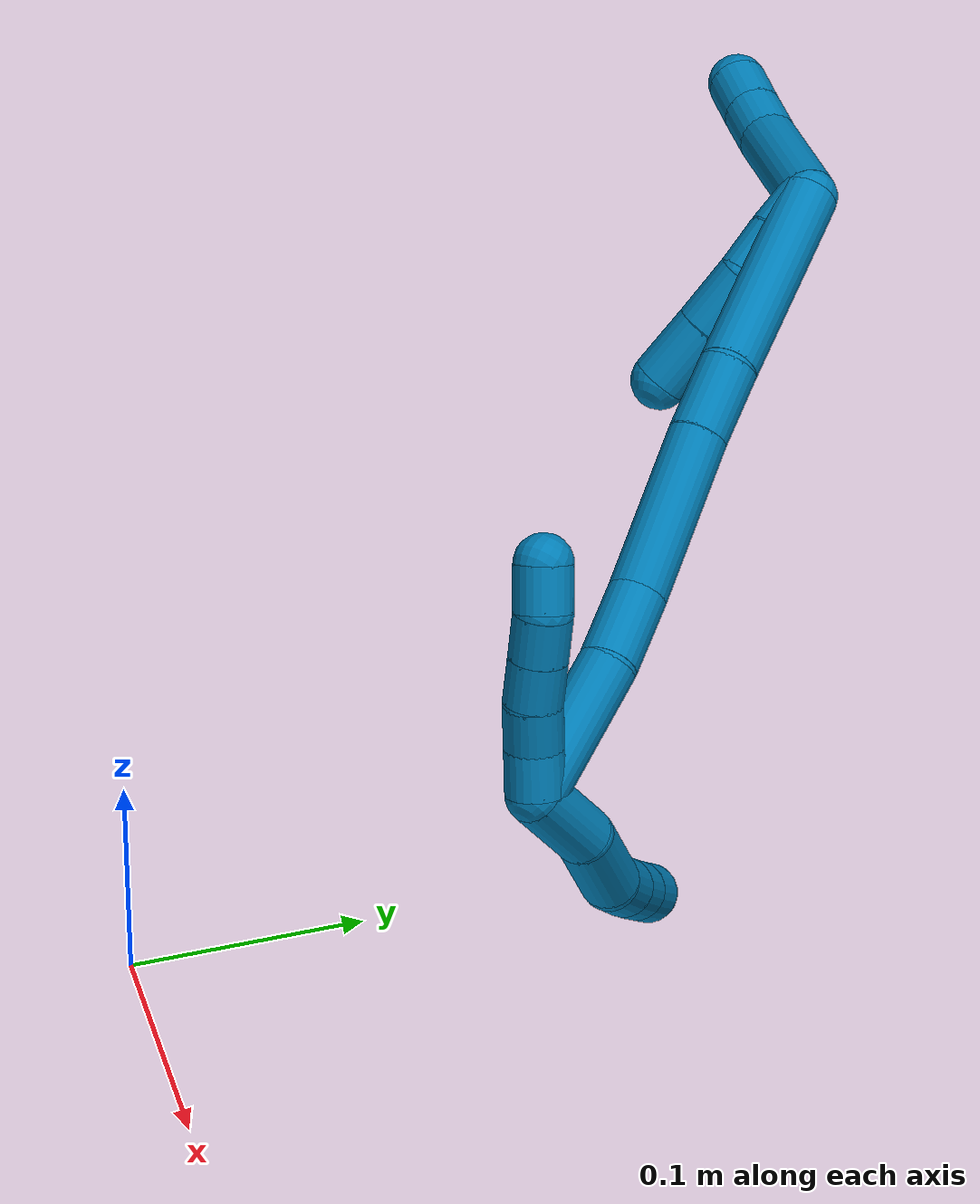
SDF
<sdf version="1.7">
 <world name="default">
  <model name="photoneo_s_sensor">
   <static>1</static>
   <pose>0 0 2 1.57079 1.57079 3.14159</pose>
   <link name="link">
    <inertial><mass>0.1</mass></inertial>
    <sensor name="sensor" type="depth">
     <update_rate>30</update_rate>
     <camera>
      <horizontal_fov>1.22</horizontal_fov>
      <image><width>1920</width><height>1200</height><format>B8G8R8</format></image>
      <clip><near>0.1</near><far>4</far></clip>
      <depth_camera><output>points</output></depth_camera>
     </camera>
     <plugin name="camera_plugin" filename="libgazebo_ros_depth_camera.so">
      <baseline>0.2</baseline>
      <alwaysOn>1</alwaysOn>
      <updateRate>0.0</updateRate>
      <cameraName>camera_ir</cameraName>
      <imageTopicName>/camera/color/image_raw</imageTopicName>
      <cameraInfoTopicName>/camera/color/camera_info</cameraInfoTopicName>
      <depthImageTopicName>/camera/depth/image_raw</depthImageTopicName>
      <depthImageCameraInfoTopicName>/camera/depth/camera_info</depthImageCameraInfoTopicName>
      <pointCloudTopicName>/camera/depth/points</pointCloudTopicName>
      <frameName>fr_optical</frameName>
      <pointCloudCutoff>0.1</pointCloudCutoff>
      <pointCloudCutoffMax>2.0</pointCloudCutoffMax>
      <distortionK1>0</distortionK1>
      <distortionK2>0</distortionK2>
      <distortionK3>0</distortionK3>
      <distortionT1>0</distortionT1>
      <distortionT2>0</distortionT2>
      <CxPrime>0</CxPrime>
      <Cx>0</Cx>
      <Cy>0</Cy>
      <focalLength>0</focalLength>
      <hackBaseline>0</hackBaseline>
     </plugin>
    </sensor>
   </link>
  </model>
  <model name="bin">
   <static>1</static>
   <link name="bottom">
    <collision name="collision-bottom">
     <pose>0 0 -0.01 0 -0 0</pose>
     <geometry><box><size>0.8 0.6 0.02</size></box></geometry>
     <surface>
      <friction><ode><mu>100</mu><mu2>100</mu2></ode></friction>
      <contact><collide_bitmask>65535</collide_bitmask></contact>
     </surface>
    </collision>
   </link>
   <link name="west_wall">
    <collision name="collision-west_wall">
     <pose>-0.41 0 0.1 0 -0 0</pose>
     <geometry><box><size>0.02 0.6 0.2</size></box></geometry>
     <surface>
      <friction><ode><mu>100</mu><mu2>100</mu2></ode></friction>
      <contact><collide_bitmask>65535</collide_bitmask></contact>
     </surface>
    </collision>
   </link>
   <link name="east_wall">
    <collision name="collision-east_wall">
     <pose>0.41 0 0.1 0 -0 0</pose>
     <geometry><box><size>0.02 0.6 0.2</size></box></geometry>
     <surface>
      <friction><ode><mu>100</mu><mu2>100</mu2></ode></friction>
      <contact><collide_bitmask>65535</collide_bitmask></contact>
     </surface>
    </collision>
   </link>
   <link name="south_wall">
    <collision name="collision-south_wall">
     <pose>0 -0.31 0.1 0 -0 0</pose>
     <geometry><box><size>0.8 0.02 0.2</size></box></geometry>
     <surface>
      <friction><ode><mu>100</mu><mu2>100</mu2></ode></friction>
      <contact><collide_bitmask>65535</collide_bitmask></contact>
     </surface>
    </collision>
   </link>
   <link name="north_wall">
    <collision name="collision-north_wall">
     <pose>0 0.31 0.1 0 -0 0</pose>
     <geometry><box><size>0.8 0.02 0.2</size></box></geometry>
     <surface>
      <friction><ode><mu>100</mu><mu2>100</mu2></ode></friction>
      <contact><collide_bitmask>65535</collide_bitmask></contact>
     </surface>
    </collision>
   </link>
  </model>
  <model name="9">
   <static>0</static>
   <link name="9">
    <collision name="collision-cylinder-e_1_2_8">
     <pose>0.019263 0.003345 0.002102 -1.00972 1.36852 -0.847029</pose>
     <geometry><cylinder><radius>0.0125</radius><length>0.039328</length></cylinder></geometry>
     <surface>
      <friction><ode><mu>1.16</mu><mu2>1.16</mu2><slip1>0</slip1><slip2>0</slip2></ode></friction>
      <contact><ode><kp>1e+06</kp><kd>1</kd><max_vel>0</max_vel><min_depth>0.001</min_depth></ode></contact>
     </surface>
    </collision>
    <visual name="visual-cylinder-e_1_2_8">
     <pose>0.019263 0.003345 0.002102 -1.00972 1.36852 -0.847029</pose>
     <geometry><cylinder><radius>0.0125</radius><length>0.039328</length></cylinder></geometry>
     <material><ambient>0 0.490196 0.709804 1</ambient></material>
    </visual>
    <collision name="collision-cylinder-e_2_8_9">
     <pose>0.057697 0.015785 0.0047 -1.51632 1.12722 -1.07858</pose>
     <geometry><cylinder><radius>0.0125</radius><length>0.042449</length></cylinder></geometry>
     <surface>
      <friction><ode><mu>1.16</mu><mu2>1.16</mu2><slip1>0</slip1><slip2>0</slip2></ode></friction>
      <contact><ode><kp>1e+06</kp><kd>1</kd><max_vel>0</max_vel><min_depth>0.001</min_depth></ode></contact>
     </surface>
    </collision>
    <visual name="visual-cylinder-e_2_8_9">
     <pose>0.057697 0.015785 0.0047 -1.51632 1.12722 -1.07858</pose>
     <geometry><cylinder><radius>0.0125</radius><length>0.042449</length></cylinder></geometry>
     <material><ambient>0 0.490196 0.709804 1</ambient></material>
    </visual>
    <collision name="collision-cylinder-e_3_9_10">
     <pose>0.086307 0.031388 0.009068 -1.03412 0.8947 -0.532713</pose>
     <geometry><cylinder><radius>0.0125</radius><length>0.024203</length></cylinder></geometry>
     <surface>
      <friction><ode><mu>1.16</mu><mu2>1.16</mu2><slip1>0</slip1><slip2>0</slip2></ode></friction>
      <contact><ode><kp>1e+06</kp><kd>1</kd><max_vel>0</max_vel><min_depth>0.001</min_depth></ode></contact>
     </surface>
    </collision>
    <visual name="visual-cylinder-e_3_9_10">
     <pose>0.086307 0.031388 0.009068 -1.03412 0.8947 -0.532713</pose>
     <geometry><cylinder><radius>0.0125</radius><length>0.024203</length></cylinder></geometry>
     <material><ambient>0 0.490196 0.709804 1</ambient></material>
    </visual>
    <collision name="collision-cylinder-e_4_10_11">
     <pose>0.104423 0.044371 0.016978 -1.01313 0.849442 -0.491711</pose>
     <geometry><cylinder><radius>0.0125</radius><length>0.023111</length></cylinder></geometry>
     <surface>
      <friction><ode><mu>1.16</mu><mu2>1.16</mu2><slip1>0</slip1><slip2>0</slip2></ode></friction>
      <contact><ode><kp>1e+06</kp><kd>1</kd><max_vel>0</max_vel><min_depth>0.001</min_depth></ode></contact>
     </surface>
    </collision>
    <visual name="visual-cylinder-e_4_10_11">
     <pose>0.104423 0.044371 0.016978 -1.01313 0.849442 -0.491711</pose>
     <geometry><cylinder><radius>0.0125</radius><length>0.023111</length></cylinder></geometry>
     <material><ambient>0 0.490196 0.709804 1</ambient></material>
    </visual>
    <collision name="collision-cylinder-e_5_11_6">
     <pose>0.121005 0.056487 0.024888 -0.96925 0.857397 -0.472294</pose>
     <geometry><cylinder><radius>0.0125</radius><length>0.020909</length></cylinder></geometry>
     <surface>
      <friction><ode><mu>1.16</mu><mu2>1.16</mu2><slip1>0</slip1><slip2>0</slip2></ode></friction>
      <contact><ode><kp>1e+06</kp><kd>1</kd><max_vel>0</max_vel><min_depth>0.001</min_depth></ode></contact>
     </surface>
    </collision>
    <visual name="visual-cylinder-e_5_11_6">
     <pose>0.121005 0.056487 0.024888 -0.96925 0.857397 -0.472294</pose>
     <geometry><cylinder><radius>0.0125</radius><length>0.020909</length></cylinder></geometry>
     <material><ambient>0 0.490196 0.709804 1</ambient></material>
    </visual>
    <collision name="collision-cylinder-e_1_2_12">
     <pose>-0.007248 -0.001265 0.006773 0.184676 -0.810697 -0.079431</pose>
     <geometry><cylinder><radius>0.0125</radius><length>0.02</length></cylinder></geometry>
     <surface>
      <friction><ode><mu>1.16</mu><mu2>1.16</mu2><slip1>0</slip1><slip2>0</slip2></ode></friction>
      <contact><ode><kp>1e+06</kp><kd>1</kd><max_vel>0</max_vel><min_depth>0.001</min_depth></ode></contact>
     </surface>
    </collision>
    <visual name="visual-cylinder-e_1_2_12">
     <pose>-0.007248 -0.001265 0.006773 0.184676 -0.810697 -0.079431</pose>
     <geometry><cylinder><radius>0.0125</radius><length>0.02</length></cylinder></geometry>
     <material><ambient>0 0.490196 0.709804 1</ambient></material>
    </visual>
    <collision name="collision-cylinder-e_2_12_13">
     <pose>-0.022282 -0.005006 0.019311 0.405573 -0.892509 -0.196117</pose>
     <geometry><cylinder><radius>0.0125</radius><length>0.02</length></cylinder></geometry>
     <surface>
      <friction><ode><mu>1.16</mu><mu2>1.16</mu2><slip1>0</slip1><slip2>0</slip2></ode></friction>
      <contact><ode><kp>1e+06</kp><kd>1</kd><max_vel>0</max_vel><min_depth>0.001</min_depth></ode></contact>
     </surface>
    </collision>
    <visual name="visual-cylinder-e_2_12_13">
     <pose>-0.022282 -0.005006 0.019311 0.405573 -0.892509 -0.196117</pose>
     <geometry><cylinder><radius>0.0125</radius><length>0.02</length></cylinder></geometry>
     <material><ambient>0 0.490196 0.709804 1</ambient></material>
    </visual>
    <collision name="collision-cylinder-e_3_13_14">
     <pose>-0.036938 -0.010577 0.031651 0.43999 -0.757338 -0.177472</pose>
     <geometry><cylinder><radius>0.0125</radius><length>0.02</length></cylinder></geometry>
     <surface>
      <friction><ode><mu>1.16</mu><mu2>1.16</mu2><slip1>0</slip1><slip2>0</slip2></ode></friction>
      <contact><ode><kp>1e+06</kp><kd>1</kd><max_vel>0</max_vel><min_depth>0.001</min_depth></ode></contact>
     </surface>
    </collision>
    <visual name="visual-cylinder-e_3_13_14">
     <pose>-0.036938 -0.010577 0.031651 0.43999 -0.757338 -0.177472</pose>
     <geometry><cylinder><radius>0.0125</radius><length>0.02</length></cylinder></geometry>
     <material><ambient>0 0.490196 0.709804 1</ambient></material>
    </visual>
    <collision name="collision-cylinder-e_4_14_15">
     <pose>-0.050713 -0.016667 0.04481 0.426889 -0.762131 -0.173243</pose>
     <geometry><cylinder><radius>0.0125</radius><length>0.02</length></cylinder></geometry>
     <surface>
      <friction><ode><mu>1.16</mu><mu2>1.16</mu2><slip1>0</slip1><slip2>0</slip2></ode></friction>
      <contact><ode><kp>1e+06</kp><kd>1</kd><max_vel>0</max_vel><min_depth>0.001</min_depth></ode></contact>
     </surface>
    </collision>
    <visual name="visual-cylinder-e_4_14_15">
     <pose>-0.050713 -0.016667 0.04481 0.426889 -0.762131 -0.173243</pose>
     <geometry><cylinder><radius>0.0125</radius><length>0.02</length></cylinder></geometry>
     <material><ambient>0 0.490196 0.709804 1</ambient></material>
    </visual>
    <collision name="collision-cylinder-e_5_15_5">
     <pose>-0.06385 -0.019762 0.059214 0.012832 -0.672911 -0.004488</pose>
     <geometry><cylinder><radius>0.0125</radius><length>0.02</length></cylinder></geometry>
     <surface>
      <friction><ode><mu>1.16</mu><mu2>1.16</mu2><slip1>0</slip1><slip2>0</slip2></ode></friction>
      <contact><ode><kp>1e+06</kp><kd>1</kd><max_vel>0</max_vel><min_depth>0.001</min_depth></ode></contact>
     </surface>
    </collision>
    <visual name="visual-cylinder-e_5_15_5">
     <pose>-0.06385 -0.019762 0.059214 0.012832 -0.672911 -0.004488</pose>
     <geometry><cylinder><radius>0.0125</radius><length>0.02</length></cylinder></geometry>
     <material><ambient>0 0.490196 0.709804 1</ambient></material>
    </visual>
    <collision name="collision-cylinder-e_1_2_16">
     <pose>7.3e-05 2e-05 0.031832 -0.000628 0.002298 -1e-06</pose>
     <geometry><cylinder><radius>0.0125</radius><length>0.063663</length></cylinder></geometry>
     <surface>
      <friction><ode><mu>1.16</mu><mu2>1.16</mu2><slip1>0</slip1><slip2>0</slip2></ode></friction>
      <contact><ode><kp>1e+06</kp><kd>1</kd><max_vel>0</max_vel><min_depth>0.001</min_depth></ode></contact>
     </surface>
    </collision>
    <visual name="visual-cylinder-e_1_2_16">
     <pose>7.3e-05 2e-05 0.031832 -0.000628 0.002298 -1e-06</pose>
     <geometry><cylinder><radius>0.0125</radius><length>0.063663</length></cylinder></geometry>
     <material><ambient>0 0.490196 0.709804 1</ambient></material>
    </visual>
    <collision name="collision-cylinder-e_2_16_17">
     <pose>0.000469 0.003123 0.080638 -0.179662 0.018728 -0.001687</pose>
     <geometry><cylinder><radius>0.0125</radius><length>0.034511</length></cylinder></geometry>
     <surface>
      <friction><ode><mu>1.16</mu><mu2>1.16</mu2><slip1>0</slip1><slip2>0</slip2></ode></friction>
      <contact><ode><kp>1e+06</kp><kd>1</kd><max_vel>0</max_vel><min_depth>0.001</min_depth></ode></contact>
     </surface>
    </collision>
    <visual name="visual-cylinder-e_2_16_17">
     <pose>0.000469 0.003123 0.080638 -0.179662 0.018728 -0.001687</pose>
     <geometry><cylinder><radius>0.0125</radius><length>0.034511</length></cylinder></geometry>
     <material><ambient>0 0.490196 0.709804 1</ambient></material>
    </visual>
    <collision name="collision-cylinder-e_3_17_18">
     <pose>-0.002984 0.009499 0.134249 -0.089647 -0.102301 0.004593</pose>
     <geometry><cylinder><radius>0.0125</radius><length>0.073954</length></cylinder></geometry>
     <surface>
      <friction><ode><mu>1.16</mu><mu2>1.16</mu2><slip1>0</slip1><slip2>0</slip2></ode></friction>
      <contact><ode><kp>1e+06</kp><kd>1</kd><max_vel>0</max_vel><min_depth>0.001</min_depth></ode></contact>
     </surface>
    </collision>
    <visual name="visual-cylinder-e_3_17_18">
     <pose>-0.002984 0.009499 0.134249 -0.089647 -0.102301 0.004593</pose>
     <geometry><cylinder><radius>0.0125</radius><length>0.073954</length></cylinder></geometry>
     <material><ambient>0 0.490196 0.709804 1</ambient></material>
    </visual>
    <collision name="collision-cylinder-e_4_18_19">
     <pose>-0.007564 0.014167 0.187751 -0.081309 -0.047508 0.001933</pose>
     <geometry><cylinder><radius>0.0125</radius><length>0.033882</length></cylinder></geometry>
     <surface>
      <friction><ode><mu>1.16</mu><mu2>1.16</mu2><slip1>0</slip1><slip2>0</slip2></ode></friction>
      <contact><ode><kp>1e+06</kp><kd>1</kd><max_vel>0</max_vel><min_depth>0.001</min_depth></ode></contact>
     </surface>
    </collision>
    <visual name="visual-cylinder-e_4_18_19">
     <pose>-0.007564 0.014167 0.187751 -0.081309 -0.047508 0.001933</pose>
     <geometry><cylinder><radius>0.0125</radius><length>0.033882</length></cylinder></geometry>
     <material><ambient>0 0.490196 0.709804 1</ambient></material>
    </visual>
    <collision name="collision-cylinder-e_5_19_1">
     <pose>-0.004259 0.025238 0.250416 -0.208651 0.087575 -0.009175</pose>
     <geometry><cylinder><radius>0.0125</radius><length>0.093989</length></cylinder></geometry>
     <surface>
      <friction><ode><mu>1.16</mu><mu2>1.16</mu2><slip1>0</slip1><slip2>0</slip2></ode></friction>
      <contact><ode><kp>1e+06</kp><kd>1</kd><max_vel>0</max_vel><min_depth>0.001</min_depth></ode></contact>
     </surface>
    </collision>
    <visual name="visual-cylinder-e_5_19_1">
     <pose>-0.004259 0.025238 0.250416 -0.208651 0.087575 -0.009175</pose>
     <geometry><cylinder><radius>0.0125</radius><length>0.093989</length></cylinder></geometry>
     <material><ambient>0 0.490196 0.709804 1</ambient></material>
    </visual>
    <collision name="collision-cylinder-e_1_1_20">
     <pose>0.003168 0.060151 0.312087 -1.00901 0.110833 -0.061242</pose>
     <geometry><cylinder><radius>0.0125</radius><length>0.059958</length></cylinder></geometry>
     <surface>
      <friction><ode><mu>1.16</mu><mu2>1.16</mu2><slip1>0</slip1><slip2>0</slip2></ode></friction>
      <contact><ode><kp>1e+06</kp><kd>1</kd><max_vel>0</max_vel><min_depth>0.001</min_depth></ode></contact>
     </surface>
    </collision>
    <visual name="visual-cylinder-e_1_1_20">
     <pose>0.003168 0.060151 0.312087 -1.00901 0.110833 -0.061242</pose>
     <geometry><cylinder><radius>0.0125</radius><length>0.059958</length></cylinder></geometry>
     <material><ambient>0 0.490196 0.709804 1</ambient></material>
    </visual>
    <collision name="collision-cylinder-e_2_20_21">
     <pose>0.005227 0.093246 0.334012 -0.915692 -0.125804 0.062054</pose>
     <geometry><cylinder><radius>0.0125</radius><length>0.020031</length></cylinder></geometry>
     <surface>
      <friction><ode><mu>1.16</mu><mu2>1.16</mu2><slip1>0</slip1><slip2>0</slip2></ode></friction>
      <contact><ode><kp>1e+06</kp><kd>1</kd><max_vel>0</max_vel><min_depth>0.001</min_depth></ode></contact>
     </surface>
    </collision>
    <visual name="visual-cylinder-e_2_20_21">
     <pose>0.005227 0.093246 0.334012 -0.915692 -0.125804 0.062054</pose>
     <geometry><cylinder><radius>0.0125</radius><length>0.020031</length></cylinder></geometry>
     <material><ambient>0 0.490196 0.709804 1</ambient></material>
    </visual>
    <collision name="collision-cylinder-e_3_21_4">
     <pose>0.00256 0.108843 0.346276 -0.893265 -0.141387 0.067799</pose>
     <geometry><cylinder><radius>0.0125</radius><length>0.020011</length></cylinder></geometry>
     <surface>
      <friction><ode><mu>1.16</mu><mu2>1.16</mu2><slip1>0</slip1><slip2>0</slip2></ode></friction>
      <contact><ode><kp>1e+06</kp><kd>1</kd><max_vel>0</max_vel><min_depth>0.001</min_depth></ode></contact>
     </surface>
    </collision>
    <visual name="visual-cylinder-e_3_21_4">
     <pose>0.00256 0.108843 0.346276 -0.893265 -0.141387 0.067799</pose>
     <geometry><cylinder><radius>0.0125</radius><length>0.020011</length></cylinder></geometry>
     <material><ambient>0 0.490196 0.709804 1</ambient></material>
    </visual>
    <collision name="collision-cylinder-e_1_1_22">
     <pose>-0.000783 0.037017 0.285647 -2.9471 -0.058862 0.586172</pose>
     <geometry><cylinder><radius>0.0125</radius><length>0.02158</length></cylinder></geometry>
     <surface>
      <friction><ode><mu>1.16</mu><mu2>1.16</mu2><slip1>0</slip1><slip2>0</slip2></ode></friction>
      <contact><ode><kp>1e+06</kp><kd>1</kd><max_vel>0</max_vel><min_depth>0.001</min_depth></ode></contact>
     </surface>
    </collision>
    <visual name="visual-cylinder-e_1_1_22">
     <pose>-0.000783 0.037017 0.285647 -2.9471 -0.058862 0.586172</pose>
     <geometry><cylinder><radius>0.0125</radius><length>0.02158</length></cylinder></geometry>
     <material><ambient>0 0.490196 0.709804 1</ambient></material>
    </visual>
    <collision name="collision-cylinder-e_2_22_23">
     <pose>-0.001197 0.041428 0.264301 -2.92876 0.02005 -0.187158</pose>
     <geometry><cylinder><radius>0.0125</radius><length>0.022058</length></cylinder></geometry>
     <surface>
      <friction><ode><mu>1.16</mu><mu2>1.16</mu2><slip1>0</slip1><slip2>0</slip2></ode></friction>
      <contact><ode><kp>1e+06</kp><kd>1</kd><max_vel>0</max_vel><min_depth>0.001</min_depth></ode></contact>
     </surface>
    </collision>
    <visual name="visual-cylinder-e_2_22_23">
     <pose>-0.001197 0.041428 0.264301 -2.92876 0.02005 -0.187158</pose>
     <geometry><cylinder><radius>0.0125</radius><length>0.022058</length></cylinder></geometry>
     <material><ambient>0 0.490196 0.709804 1</ambient></material>
    </visual>
    <collision name="collision-cylinder-e_3_23_24">
     <pose>0.001369 0.050513 0.241771 -2.61991 0.171271 -0.622326</pose>
     <geometry><cylinder><radius>0.0125</radius><length>0.027514</length></cylinder></geometry>
     <surface>
      <friction><ode><mu>1.16</mu><mu2>1.16</mu2><slip1>0</slip1><slip2>0</slip2></ode></friction>
      <contact><ode><kp>1e+06</kp><kd>1</kd><max_vel>0</max_vel><min_depth>0.001</min_depth></ode></contact>
     </surface>
    </collision>
    <visual name="visual-cylinder-e_3_23_24">
     <pose>0.001369 0.050513 0.241771 -2.61991 0.171271 -0.622326</pose>
     <geometry><cylinder><radius>0.0125</radius><length>0.027514</length></cylinder></geometry>
     <material><ambient>0 0.490196 0.709804 1</ambient></material>
    </visual>
    <collision name="collision-cylinder-e_4_24_3">
     <pose>0.006229 0.064813 0.217985 -2.58153 0.17524 -0.592906</pose>
     <geometry><cylinder><radius>0.0125</radius><length>0.028848</length></cylinder></geometry>
     <surface>
      <friction><ode><mu>1.16</mu><mu2>1.16</mu2><slip1>0</slip1><slip2>0</slip2></ode></friction>
      <contact><ode><kp>1e+06</kp><kd>1</kd><max_vel>0</max_vel><min_depth>0.001</min_depth></ode></contact>
     </surface>
    </collision>
    <visual name="visual-cylinder-e_4_24_3">
     <pose>0.006229 0.064813 0.217985 -2.58153 0.17524 -0.592906</pose>
     <geometry><cylinder><radius>0.0125</radius><length>0.028848</length></cylinder></geometry>
     <material><ambient>0 0.490196 0.709804 1</ambient></material>
    </visual>
    <collision name="collision-sphere-3">
     <pose>0.008743 0.072359 0.205952 0 -0 0</pose>
     <geometry><sphere><radius>0.0125</radius></sphere></geometry>
     <surface>
      <friction><ode><mu>1.16</mu><mu2>1.16</mu2><slip1>0</slip1><slip2>0</slip2></ode></friction>
      <contact><ode><kp>1e+06</kp><kd>1</kd><max_vel>0</max_vel><min_depth>0.001</min_depth></ode></contact>
     </surface>
    </collision>
    <visual name="visual-sphere-3">
     <pose>0.008743 0.072359 0.205952 0 -0 0</pose>
     <geometry><sphere><radius>0.0125</radius></sphere></geometry>
     <material><ambient>0 0.490196 0.709804 1</ambient></material>
    </visual>
    <collision name="collision-sphere-24">
     <pose>0.003714 0.057268 0.230018 0 -0 0</pose>
     <geometry><sphere><radius>0.0125</radius></sphere></geometry>
     <surface>
      <friction><ode><mu>1.16</mu><mu2>1.16</mu2><slip1>0</slip1><slip2>0</slip2></ode></friction>
      <contact><ode><kp>1e+06</kp><kd>1</kd><max_vel>0</max_vel><min_depth>0.001</min_depth></ode></contact>
     </surface>
    </collision>
    <visual name="visual-sphere-24">
     <pose>0.003714 0.057268 0.230018 0 -0 0</pose>
     <geometry><sphere><radius>0.0125</radius></sphere></geometry>
     <material><ambient>0 0.490196 0.709804 1</ambient></material>
    </visual>
    <collision name="collision-sphere-23">
     <pose>-0.000976 0.043757 0.253523 0 -0 0</pose>
     <geometry><sphere><radius>0.0125</radius></sphere></geometry>
     <surface>
      <friction><ode><mu>1.16</mu><mu2>1.16</mu2><slip1>0</slip1><slip2>0</slip2></ode></friction>
      <contact><ode><kp>1e+06</kp><kd>1</kd><max_vel>0</max_vel><min_depth>0.001</min_depth></ode></contact>
     </surface>
    </collision>
    <visual name="visual-sphere-23">
     <pose>-0.000976 0.043757 0.253523 0 -0 0</pose>
     <geometry><sphere><radius>0.0125</radius></sphere></geometry>
     <material><ambient>0 0.490196 0.709804 1</ambient></material>
    </visual>
    <collision name="collision-sphere-22">
     <pose>-0.001418 0.039099 0.275079 0 -0 0</pose>
     <geometry><sphere><radius>0.0125</radius></sphere></geometry>
     <surface>
      <friction><ode><mu>1.16</mu><mu2>1.16</mu2><slip1>0</slip1><slip2>0</slip2></ode></friction>
      <contact><ode><kp>1e+06</kp><kd>1</kd><max_vel>0</max_vel><min_depth>0.001</min_depth></ode></contact>
     </surface>
    </collision>
    <visual name="visual-sphere-22">
     <pose>-0.001418 0.039099 0.275079 0 -0 0</pose>
     <geometry><sphere><radius>0.0125</radius></sphere></geometry>
     <material><ambient>0 0.490196 0.709804 1</ambient></material>
    </visual>
    <collision name="collision-sphere-4">
     <pose>0.00115 0.116561 0.352485 0 -0 0</pose>
     <geometry><sphere><radius>0.0125</radius></sphere></geometry>
     <surface>
      <friction><ode><mu>1.16</mu><mu2>1.16</mu2><slip1>0</slip1><slip2>0</slip2></ode></friction>
      <contact><ode><kp>1e+06</kp><kd>1</kd><max_vel>0</max_vel><min_depth>0.001</min_depth></ode></contact>
     </surface>
    </collision>
    <visual name="visual-sphere-4">
     <pose>0.00115 0.116561 0.352485 0 -0 0</pose>
     <geometry><sphere><radius>0.0125</radius></sphere></geometry>
     <material><ambient>0 0.490196 0.709804 1</ambient></material>
    </visual>
    <collision name="collision-sphere-21">
     <pose>0.00397 0.101126 0.340066 0 -0 0</pose>
     <geometry><sphere><radius>0.0125</radius></sphere></geometry>
     <surface>
      <friction><ode><mu>1.16</mu><mu2>1.16</mu2><slip1>0</slip1><slip2>0</slip2></ode></friction>
      <contact><ode><kp>1e+06</kp><kd>1</kd><max_vel>0</max_vel><min_depth>0.001</min_depth></ode></contact>
     </surface>
    </collision>
    <visual name="visual-sphere-21">
     <pose>0.00397 0.101126 0.340066 0 -0 0</pose>
     <geometry><sphere><radius>0.0125</radius></sphere></geometry>
     <material><ambient>0 0.490196 0.709804 1</ambient></material>
    </visual>
    <collision name="collision-sphere-20">
     <pose>0.006483 0.085367 0.327959 0 -0 0</pose>
     <geometry><sphere><radius>0.0125</radius></sphere></geometry>
     <surface>
      <friction><ode><mu>1.16</mu><mu2>1.16</mu2><slip1>0</slip1><slip2>0</slip2></ode></friction>
      <contact><ode><kp>1e+06</kp><kd>1</kd><max_vel>0</max_vel><min_depth>0.001</min_depth></ode></contact>
     </surface>
    </collision>
    <visual name="visual-sphere-20">
     <pose>0.006483 0.085367 0.327959 0 -0 0</pose>
     <geometry><sphere><radius>0.0125</radius></sphere></geometry>
     <material><ambient>0 0.490196 0.709804 1</ambient></material>
    </visual>
    <collision name="collision-sphere-6">
     <pose>0.128911 0.062128 0.02876 0 -0 0</pose>
     <geometry><sphere><radius>0.0125</radius></sphere></geometry>
     <surface>
      <friction><ode><mu>1.16</mu><mu2>1.16</mu2><slip1>0</slip1><slip2>0</slip2></ode></friction>
      <contact><ode><kp>1e+06</kp><kd>1</kd><max_vel>0</max_vel><min_depth>0.001</min_depth></ode></contact>
     </surface>
    </collision>
    <visual name="visual-sphere-6">
     <pose>0.128911 0.062128 0.02876 0 -0 0</pose>
     <geometry><sphere><radius>0.0125</radius></sphere></geometry>
     <material><ambient>0 0.490196 0.709804 1</ambient></material>
    </visual>
    <collision name="collision-sphere-11">
     <pose>0.1131 0.050846 0.021017 0 -0 0</pose>
     <geometry><sphere><radius>0.0125</radius></sphere></geometry>
     <surface>
      <friction><ode><mu>1.16</mu><mu2>1.16</mu2><slip1>0</slip1><slip2>0</slip2></ode></friction>
      <contact><ode><kp>1e+06</kp><kd>1</kd><max_vel>0</max_vel><min_depth>0.001</min_depth></ode></contact>
     </surface>
    </collision>
    <visual name="visual-sphere-11">
     <pose>0.1131 0.050846 0.021017 0 -0 0</pose>
     <geometry><sphere><radius>0.0125</radius></sphere></geometry>
     <material><ambient>0 0.490196 0.709804 1</ambient></material>
    </visual>
    <collision name="collision-sphere-10">
     <pose>0.095746 0.037896 0.012939 0 -0 0</pose>
     <geometry><sphere><radius>0.0125</radius></sphere></geometry>
     <surface>
      <friction><ode><mu>1.16</mu><mu2>1.16</mu2><slip1>0</slip1><slip2>0</slip2></ode></friction>
      <contact><ode><kp>1e+06</kp><kd>1</kd><max_vel>0</max_vel><min_depth>0.001</min_depth></ode></contact>
     </surface>
    </collision>
    <visual name="visual-sphere-10">
     <pose>0.095746 0.037896 0.012939 0 -0 0</pose>
     <geometry><sphere><radius>0.0125</radius></sphere></geometry>
     <material><ambient>0 0.490196 0.709804 1</ambient></material>
    </visual>
    <collision name="collision-sphere-9">
     <pose>0.076867 0.024881 0.005196 0 -0 0</pose>
     <geometry><sphere><radius>0.0125</radius></sphere></geometry>
     <surface>
      <friction><ode><mu>1.16</mu><mu2>1.16</mu2><slip1>0</slip1><slip2>0</slip2></ode></friction>
      <contact><ode><kp>1e+06</kp><kd>1</kd><max_vel>0</max_vel><min_depth>0.001</min_depth></ode></contact>
     </surface>
    </collision>
    <visual name="visual-sphere-9">
     <pose>0.076867 0.024881 0.005196 0 -0 0</pose>
     <geometry><sphere><radius>0.0125</radius></sphere></geometry>
     <material><ambient>0 0.490196 0.709804 1</ambient></material>
    </visual>
    <collision name="collision-sphere-2">
     <geometry><sphere><radius>0.0125</radius></sphere></geometry>
     <surface>
      <friction><ode><mu>1.16</mu><mu2>1.16</mu2><slip1>0</slip1><slip2>0</slip2></ode></friction>
      <contact><ode><kp>1e+06</kp><kd>1</kd><max_vel>0</max_vel><min_depth>0.001</min_depth></ode></contact>
     </surface>
    </collision>
    <visual name="visual-sphere-2">
     <geometry><sphere><radius>0.0125</radius></sphere></geometry>
     <material><ambient>0 0.490196 0.709804 1</ambient></material>
    </visual>
    <collision name="collision-sphere-19">
     <pose>-0.008369 0.015541 0.204617 0 -0 0</pose>
     <geometry><sphere><radius>0.0125</radius></sphere></geometry>
     <surface>
      <friction><ode><mu>1.16</mu><mu2>1.16</mu2><slip1>0</slip1><slip2>0</slip2></ode></friction>
      <contact><ode><kp>1e+06</kp><kd>1</kd><max_vel>0</max_vel><min_depth>0.001</min_depth></ode></contact>
     </surface>
    </collision>
    <visual name="visual-sphere-19">
     <pose>-0.008369 0.015541 0.204617 0 -0 0</pose>
     <geometry><sphere><radius>0.0125</radius></sphere></geometry>
     <material><ambient>0 0.490196 0.709804 1</ambient></material>
    </visual>
    <collision name="collision-sphere-8">
     <pose>0.038526 0.00669 0.004204 0 -0 0</pose>
     <geometry><sphere><radius>0.0125</radius></sphere></geometry>
     <surface>
      <friction><ode><mu>1.16</mu><mu2>1.16</mu2><slip1>0</slip1><slip2>0</slip2></ode></friction>
      <contact><ode><kp>1e+06</kp><kd>1</kd><max_vel>0</max_vel><min_depth>0.001</min_depth></ode></contact>
     </surface>
    </collision>
    <visual name="visual-sphere-8">
     <pose>0.038526 0.00669 0.004204 0 -0 0</pose>
     <geometry><sphere><radius>0.0125</radius></sphere></geometry>
     <material><ambient>0 0.490196 0.709804 1</ambient></material>
    </visual>
    <collision name="collision-sphere-12">
     <pose>-0.014495 -0.00253 0.013546 0 -0 0</pose>
     <geometry><sphere><radius>0.0125</radius></sphere></geometry>
     <surface>
      <friction><ode><mu>1.16</mu><mu2>1.16</mu2><slip1>0</slip1><slip2>0</slip2></ode></friction>
      <contact><ode><kp>1e+06</kp><kd>1</kd><max_vel>0</max_vel><min_depth>0.001</min_depth></ode></contact>
     </surface>
    </collision>
    <visual name="visual-sphere-12">
     <pose>-0.014495 -0.00253 0.013546 0 -0 0</pose>
     <geometry><sphere><radius>0.0125</radius></sphere></geometry>
     <material><ambient>0 0.490196 0.709804 1</ambient></material>
    </visual>
    <collision name="collision-sphere-13">
     <pose>-0.030068 -0.007482 0.025077 0 -0 0</pose>
     <geometry><sphere><radius>0.0125</radius></sphere></geometry>
     <surface>
      <friction><ode><mu>1.16</mu><mu2>1.16</mu2><slip1>0</slip1><slip2>0</slip2></ode></friction>
      <contact><ode><kp>1e+06</kp><kd>1</kd><max_vel>0</max_vel><min_depth>0.001</min_depth></ode></contact>
     </surface>
    </collision>
    <visual name="visual-sphere-13">
     <pose>-0.030068 -0.007482 0.025077 0 -0 0</pose>
     <geometry><sphere><radius>0.0125</radius></sphere></geometry>
     <material><ambient>0 0.490196 0.709804 1</ambient></material>
    </visual>
    <collision name="collision-sphere-14">
     <pose>-0.043808 -0.013672 0.038226 0 -0 0</pose>
     <geometry><sphere><radius>0.0125</radius></sphere></geometry>
     <surface>
      <friction><ode><mu>1.16</mu><mu2>1.16</mu2><slip1>0</slip1><slip2>0</slip2></ode></friction>
      <contact><ode><kp>1e+06</kp><kd>1</kd><max_vel>0</max_vel><min_depth>0.001</min_depth></ode></contact>
     </surface>
    </collision>
    <visual name="visual-sphere-14">
     <pose>-0.043808 -0.013672 0.038226 0 -0 0</pose>
     <geometry><sphere><radius>0.0125</radius></sphere></geometry>
     <material><ambient>0 0.490196 0.709804 1</ambient></material>
    </visual>
    <collision name="collision-sphere-15">
     <pose>-0.057617 -0.019662 0.051395 0 -0 0</pose>
     <geometry><sphere><radius>0.0125</radius></sphere></geometry>
     <surface>
      <friction><ode><mu>1.16</mu><mu2>1.16</mu2><slip1>0</slip1><slip2>0</slip2></ode></friction>
      <contact><ode><kp>1e+06</kp><kd>1</kd><max_vel>0</max_vel><min_depth>0.001</min_depth></ode></contact>
     </surface>
    </collision>
    <visual name="visual-sphere-15">
     <pose>-0.057617 -0.019662 0.051395 0 -0 0</pose>
     <geometry><sphere><radius>0.0125</radius></sphere></geometry>
     <material><ambient>0 0.490196 0.709804 1</ambient></material>
    </visual>
    <collision name="collision-sphere-5">
     <pose>-0.070083 -0.019863 0.067034 0 -0 0</pose>
     <geometry><sphere><radius>0.0125</radius></sphere></geometry>
     <surface>
      <friction><ode><mu>1.16</mu><mu2>1.16</mu2><slip1>0</slip1><slip2>0</slip2></ode></friction>
      <contact><ode><kp>1e+06</kp><kd>1</kd><max_vel>0</max_vel><min_depth>0.001</min_depth></ode></contact>
     </surface>
    </collision>
    <visual name="visual-sphere-5">
     <pose>-0.070083 -0.019863 0.067034 0 -0 0</pose>
     <geometry><sphere><radius>0.0125</radius></sphere></geometry>
     <material><ambient>0 0.490196 0.709804 1</ambient></material>
    </visual>
    <collision name="collision-sphere-16">
     <pose>0.000146 4e-05 0.063663 0 -0 0</pose>
     <geometry><sphere><radius>0.0125</radius></sphere></geometry>
     <surface>
      <friction><ode><mu>1.16</mu><mu2>1.16</mu2><slip1>0</slip1><slip2>0</slip2></ode></friction>
      <contact><ode><kp>1e+06</kp><kd>1</kd><max_vel>0</max_vel><min_depth>0.001</min_depth></ode></contact>
     </surface>
    </collision>
    <visual name="visual-sphere-16">
     <pose>0.000146 4e-05 0.063663 0 -0 0</pose>
     <geometry><sphere><radius>0.0125</radius></sphere></geometry>
     <material><ambient>0 0.490196 0.709804 1</ambient></material>
    </visual>
    <collision name="collision-sphere-17">
     <pose>0.000793 0.006206 0.097613 0 -0 0</pose>
     <geometry><sphere><radius>0.0125</radius></sphere></geometry>
     <surface>
      <friction><ode><mu>1.16</mu><mu2>1.16</mu2><slip1>0</slip1><slip2>0</slip2></ode></friction>
      <contact><ode><kp>1e+06</kp><kd>1</kd><max_vel>0</max_vel><min_depth>0.001</min_depth></ode></contact>
     </surface>
    </collision>
    <visual name="visual-sphere-17">
     <pose>0.000793 0.006206 0.097613 0 -0 0</pose>
     <geometry><sphere><radius>0.0125</radius></sphere></geometry>
     <material><ambient>0 0.490196 0.709804 1</ambient></material>
    </visual>
    <collision name="collision-sphere-18">
     <pose>-0.00676 0.012792 0.170885 0 -0 0</pose>
     <geometry><sphere><radius>0.0125</radius></sphere></geometry>
     <surface>
      <friction><ode><mu>1.16</mu><mu2>1.16</mu2><slip1>0</slip1><slip2>0</slip2></ode></friction>
      <contact><ode><kp>1e+06</kp><kd>1</kd><max_vel>0</max_vel><min_depth>0.001</min_depth></ode></contact>
     </surface>
    </collision>
    <visual name="visual-sphere-18">
     <pose>-0.00676 0.012792 0.170885 0 -0 0</pose>
     <geometry><sphere><radius>0.0125</radius></sphere></geometry>
     <material><ambient>0 0.490196 0.709804 1</ambient></material>
    </visual>
    <collision name="collision-sphere-1">
     <pose>-0.000148 0.034935 0.296215 0 -0 0</pose>
     <geometry><sphere><radius>0.0125</radius></sphere></geometry>
     <surface>
      <friction><ode><mu>1.16</mu><mu2>1.16</mu2><slip1>0</slip1><slip2>0</slip2></ode></friction>
      <contact><ode><kp>1e+06</kp><kd>1</kd><max_vel>0</max_vel><min_depth>0.001</min_depth></ode></contact>
     </surface>
    </collision>
    <visual name="visual-sphere-1">
     <pose>-0.000148 0.034935 0.296215 0 -0 0</pose>
     <geometry><sphere><radius>0.0125</radius></sphere></geometry>
     <material><ambient>0 0.490196 0.709804 1</ambient></material>
    </visual>
    <inertial>
     <pose>0.008376 0.025321 0.142069 0 -0 0</pose>
     <mass>0.75</mass>
     <inertia>
      <ixx>0.000179</ixx>
      <ixy>0</ixy>
      <ixz>0</ixz>
      <iyy>0.000176</iyy>
      <iyz>0</iyz>
      <izz>-3.9e-05</izz>
     </inertia>
    </inertial>
   </link>
   <pose>0.081273 0.15154 0.132339 -0.83295 0.941104 1.40281</pose>
  </model>
 </world>
</sdf>
